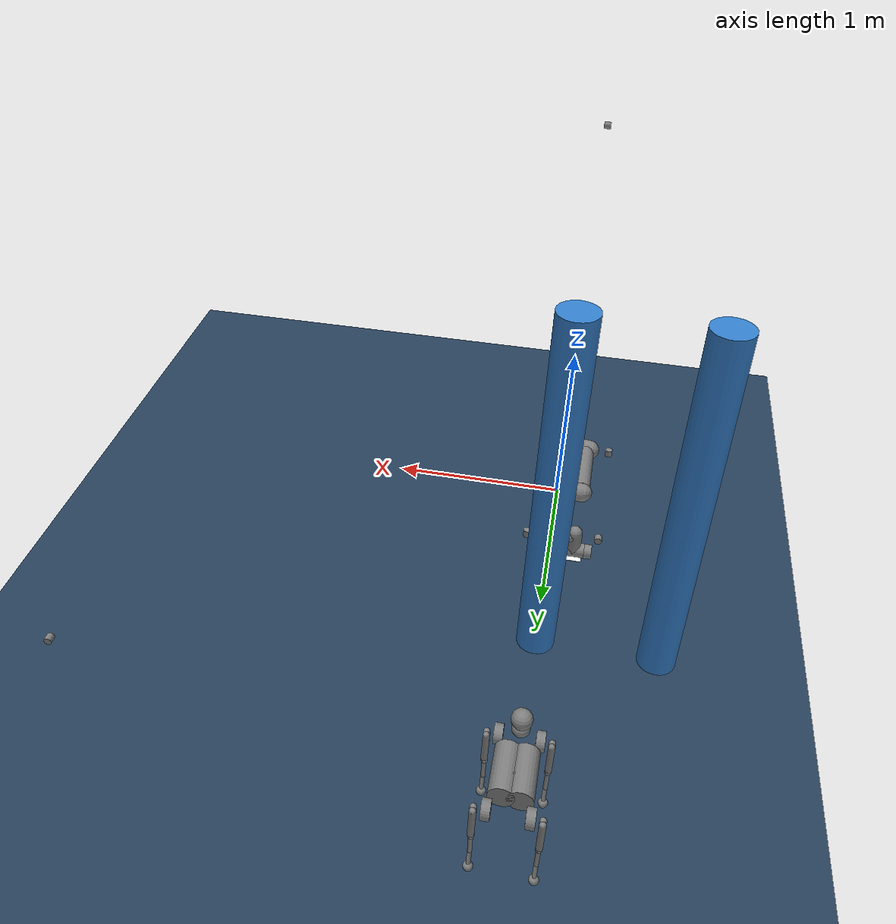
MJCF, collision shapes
<mujoco model="main scene">

  <statistic center="3 0 0.1" extent="0.8"/>
	<option timestep="0.002"/>

  <include file="robots/universal_robots_ur5e/ur5e.xml"/>
  <include file="robots/unitree_go2/go2_mjx.xml"/>

  <visual>
    <headlight diffuse="0.6 0.6 0.6" ambient="0.3 0.3 0.3" specular="0 0 0"/>
    <rgba haze="0.15 0.25 0.35 1"/>
    <global azimuth="-130" elevation="-20"/>
  </visual>

  <asset>
    <texture type="skybox" builtin="gradient" rgb1="0.3 0.5 0.7" rgb2="0 0 0" width="512" height="3072"/>
    <texture type="2d" name="groundplane" builtin="checker" mark="edge" rgb1="0.2 0.3 0.4" rgb2="0.1 0.2 0.3"
      markrgb="0.8 0.8 0.8" width="300" height="300"/>
    <material name="groundplane" texture="groundplane" texuniform="true" texrepeat="5 5" reflectance="0.0"/>

  </asset>

  <worldbody>
    <light pos="0 0 1.5" dir="0 0 -1" directional="true"/>
    <geom name="floor" size="0 0 0.05" type="plane" material="groundplane"  />
    <body name="corridor1" pos="120.3 0 -0.19">
            <geom name="slippery_surface" size="2.0 0.5 0.2" type="plane" priority="2" friction="0.8 0.08 0.02" rgba="0.2 0.2 0.8 0.3"/>
    </body>
    <body name="obstacle1" pos="0 1.3 1.0">
    <joint name="obstacle1_free" type="free"/>
    <geom type="cylinder" size="0.1 1.0" rgba="0.2 0.5 0.8 1"/>
    </body>

    <body name="obstacle2" pos="-0.63 1.3 1.0">
      <joint name="obstacle2_free" type="free"/>
      <geom type="cylinder" size="0.1 1.0" rgba="0.2 0.5 0.8 1"/>
    </body>

  </worldbody>
  <keyframe>
    <key name="home" qpos="
    -1.5708 -1.5708 1.5708 -1.5708 -1.5708 0
    2.6 0.0 0.478
    0.7073883 0 0 -0.7068252
    0.1 0.9 -1.8
    -0.1 0.9 -1.8
    0.1 0.9 -1.8
    -0.1 0.9 -1.8
    0.0 0 0 1 0 0 0
    0.0 0 0 1 0 0 0"
    ctrl="-1.5708 -1.5708 1.5708 -1.5708 -1.5708 0 0.1 0.9 -1.8 -0.1 0.9 -1.8 0.1 0.9 -1.8 -0.1 0.9 -1.8"/>

  </keyframe>

</mujoco>

 <!--desired: 0.7073883 , 0, 0, -0.7068252 -->
<!-- prev quat: 1 0 0 0  -->
<!-- pos="2.6 0.0 0.445" euler="0 0 -1.57" -->

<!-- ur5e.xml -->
<mujoco model="ur5e" root="true">
  <compiler angle="radian" meshdir="robots/its_all_a_mesh" autolimits="true"/>

  <option integrator="implicitfast"/>

  <default>
    <default class="ur5e">
      <material specular="0.5" shininess="0.25"/>
      <joint axis="0 1 0" range="-6.28319 6.28319" armature="0.1"/>
      <general gaintype="fixed" biastype="affine" ctrlrange="-6.2831 6.2831" gainprm="2000" biasprm="0 -2000 -400"
        forcerange="-150 150"/>
      <default class="size3">
        <default class="size3_limited">
          <joint range="-3.1415 3.1415"/>
          <general ctrlrange="-3.1415 3.1415"/>
        </default>
      </default>
      <default class="size1">
        <general gainprm="500" biasprm="0 -500 -100" forcerange="-28 28"/>
      </default>
      <default class="visual_arm">
        <geom type="mesh" contype="0" conaffinity="0" group="2"/>
      </default>
      <default class="collision_arm">
        <geom type="capsule" group="3"/>
        <default class="one_joint_col">
          <geom size="0.02 0.02" type="cylinder"/>
        </default>
        <default class="eef_collision">
          <geom type="cylinder"/>
        </default>
      </default>
      <site size="0.001" rgba="0.5 0.5 0.5 0.3" group="4"/>
    </default>
  </default>

  <asset>
    <material class="ur5e" name="black_2" rgba="0.033 0.033 0.033 1"/>
    <material class="ur5e" name="jointgray" rgba="0.278 0.278 0.278 1"/>
    <material class="ur5e" name="linkgray" rgba="0.82 0.82 0.82 1"/>
    <material class="ur5e" name="urblue" rgba="0.49 0.678 0.8 1"/>

    <mesh name="base_0_ur5e" file="base_0_ur5e.obj"/>
    <mesh name="base_1_ur5e" file="base_1_ur5e.obj"/>
    <mesh file="shoulder_0.obj"/>
    <mesh file="shoulder_1.obj"/>
    <mesh file="shoulder_2.obj"/>
    <mesh file="upperarm_0.obj"/>
    <mesh file="upperarm_1.obj"/>
    <mesh file="upperarm_2.obj"/>
    <mesh file="upperarm_3.obj"/>
    <mesh file="forearm_0.obj"/>
    <mesh file="forearm_1.obj"/>
    <mesh file="forearm_2.obj"/>
    <mesh file="forearm_3.obj"/>
    <mesh file="wrist1_0.obj"/>
    <mesh file="wrist1_1.obj"/>
    <mesh file="wrist1_2.obj"/>
    <mesh file="wrist2_0.obj"/>
    <mesh file="wrist2_1.obj"/>
    <mesh file="wrist2_2.obj"/>
    <mesh file="wrist3.obj"/>

    <!-- ID=0 -->
    <texture name="apriltag_texture_0" type="2d" file="tag_00.png" builtin="none"/>

    <material name="apriltag_material_0" texture="apriltag_texture_0"/>

    <!-- ID=1 -->
    <texture name="apriltag_texture_1" type="2d" file="tag_01.png" builtin="none"/>

    <material name="apriltag_material_1" texture="apriltag_texture_1"/>

    <!-- ID=2 -->
    <texture name="apriltag_texture_2" type="2d" file="tag_02.png" builtin="none"/>

    <material name="apriltag_material_2" texture="apriltag_texture_2"/>

    <!-- ID=3 -->
    <texture name="apriltag_texture_3" type="2d" file="tag_03.png" builtin="none"/>

    <material name="apriltag_material_3" texture="apriltag_texture_3"/>

  </asset>

  <worldbody>
    <light name="spotlight" mode="targetbodycom" target="wrist_2_link" pos="0 -1 2"/>
    <body name="dummy_base" childclass="ur5e" />

    <!-- Collision -->
    <geom name="joint_1" quat="1 0 1 0" pos="0 -1.04 2" class="one_joint_col"/>
    <body name="base_ur5e" pos="0 0 0.19" quat="1 0 0 1" childclass="ur5e" >

        <!-- Collision -->
        <geom name="joint_2" quat="1 0 1 0" pos="2.2 -2.3 0.19" class="one_joint_col"/>

      <inertial mass="4.0" pos="0 0 0" diaginertia="0.00443333156 0.00443333156 0.0072"/>
      <geom mesh="base_0_ur5e" material="black_2" class="visual_arm"/>
      <geom mesh="base_1_ur5e" material="jointgray" class="visual_arm"/>
      <body name="shoulder_link" pos="0 0 0.163">

        <!-- Collision -->
        <geom name="joint_3" quat="1 0 1 0" pos="0 0 0.163" class="one_joint_col"/>

        <inertial mass="3.7" pos="0 0 0" diaginertia="0.0102675 0.0102675 0.00666"/>
        <joint name="shoulder_pan_joint" class="size3" axis="0 0 1"/>
        <geom mesh="shoulder_0" material="urblue" class="visual_arm"/>
        <geom mesh="shoulder_1" material="black_2" class="visual_arm"/>
        <geom mesh="shoulder_2" material="jointgray" class="visual_arm"/>

        <geom class="collision_arm" size="0.06 0.06" pos="0 0 -0.04"/>

        <body name="upper_arm_link" pos="0 0.138 0" quat="1 0 1 0">

          <!-- Collision -->
          <geom name="joint_4" quat="1 0 1 0" pos="0 0.138 0" class="one_joint_col"/>

          <inertial mass="8.393" pos="0 0 0.2125" diaginertia="0.133886 0.133886 0.0151074"/>
          <joint name="shoulder_lift_joint" class="size3"/>

          <!-- ID=3 -->
          <geom name="shoulder_apriltag_3" type="box" pos="0 -0.20 0" quat="0.707 0.707 0 0 " size="0.05 0.05 0.001" material="apriltag_material_3" rgba="1 1 1 1" contype="0" conaffinity="0"/>

          <geom mesh="upperarm_0" material="linkgray" class="visual_arm"/>
          <geom mesh="upperarm_1" material="black_2" class="visual_arm"/>
          <geom mesh="upperarm_2" material="jointgray" class="visual_arm"/>
          <geom mesh="upperarm_3" material="urblue" class="visual_arm"/>
          <geom class="collision_arm" pos="0 -0.04 0" quat="1 1 0 0" size="0.06 0.06"/>
          <geom class="collision_arm" size="0.05 0.2" pos="0 0 0.2"/>
          <body name="forearm_link" pos="0 -0.131 0.425">

            <!-- Collision -->
            <geom name="joint_5" quat="1 0 1 0" pos="0 -0.131 0.425" class="one_joint_col"/>

            <inertial mass="2.275" pos="0 0 0.196" diaginertia="0.0311796 0.0311796 0.004095"/>
            <joint name="elbow_joint" class="size3_limited"/>
            <geom mesh="forearm_0" material="urblue" class="visual_arm"/>
            <geom mesh="forearm_1" material="linkgray" class="visual_arm"/>
            <geom mesh="forearm_2" material="black_2" class="visual_arm"/>
            <geom mesh="forearm_3" material="jointgray" class="visual_arm"/>

            <!-- ID=1 -->
            <geom name="shoulder_apriltag_1" type="box" pos="0 -0.05 0.04" quat="0.707 0.707 0 0 " size="0.05 0.05 0.001" material="apriltag_material_1" rgba="1 1 1 1" contype="0" conaffinity="0"/>

            <geom class="collision_arm" pos="0 0.08 0" quat="1 1 0 0" size="0.055 0.06"/>
            <geom class="collision_arm" size="0.038 0.19" pos="0 0 0.2"/>
            <body name="wrist_1_link" pos="0 0 0.392" quat="1 0 1 0">

              <!-- Collision -->
              <geom name="joint_6" quat="1 0 1 0" pos="0 0 0.392" class="one_joint_col"/>

              <inertial mass="1.219" pos="0 0.127 0" diaginertia="0.0025599 0.0025599 0.0021942"/>
              <joint name="wrist_1_joint" class="size1"/>
              <geom mesh="wrist1_0" material="black_2" class="visual_arm"/>

              <!-- ID=2 -->
              <geom name="shoulder_apriltag_2" type="box" pos="0 -0.06 0" quat="0.5 0.5 -0.5 0.5 " size="0.05 0.05 0.001" material="apriltag_material_2" rgba="1 1 1 1" contype="0" conaffinity="0"/>

              <geom mesh="wrist1_1" material="urblue" class="visual_arm"/>
              <geom mesh="wrist1_2" material="jointgray" class="visual_arm"/>
              <geom class="collision_arm" pos="0 0.05 0" quat="1 1 0 0" size="0.04 0.07"/>
              <body name="wrist_2_link" pos="0 0.127 0">

                <!-- Collision -->
                <geom name="joint_7" quat="1 0 1 0" pos="0 0.127 0" class="one_joint_col"/>

                <inertial mass="1.219" pos="0 0 0.1" diaginertia="0.0025599 0.0025599 0.0021942"/>
                <joint name="wrist_2_joint" axis="0 0 1" class="size1"/>
                <geom mesh="wrist2_0" material="black_2" class="visual_arm"/>
                <geom mesh="wrist2_1" material="urblue" class="visual_arm"/>
                <geom mesh="wrist2_2" material="jointgray" class="visual_arm"/>
                <geom class="collision_arm" size="0.04 0.06" pos="0 0 0.04"/>
                <geom class="collision_arm" pos="0 0.02 0.1" quat="1 1 0 0" size="0.04 0.04"/>
                <body name="wrist_3_link" pos="0 0 0.1">

                  <!-- Collision -->

                  <site name="ee_site" pos="0 0 0.1" size="0.002" rgba="1 0 0 1"/>
                  <inertial mass="0.1889" pos="0 0.0771683 0" quat="1 0 0 1"
                    diaginertia="0.000132134 9.90863e-05 9.90863e-05"/>
                  <joint name="wrist_3_joint" class="size1"/>
                  <geom material="linkgray" mesh="wrist3" class="visual_arm"/>

                  <!-- ID=0 -->
                  <geom name="shoulder_apriltag_0" type="box" pos="0 0 0.04" size="0.05 0.05 0.001" material="apriltag_material_0" rgba="1 1 1 1" contype="0" conaffinity="0"/>

                  <geom class="eef_collision" pos="0 0.08 0" quat="1 1 0 0" size="0.04 0.02"/>
                  <site name="attachment_site" pos="0 0.1 0" quat="-1 1 0 0"/>

                </body>
              </body>
            </body>
          </body>
        </body>
      </body>
    </body>
  </worldbody>

  <actuator>
    <general class="size3" name="shoulder_pan" joint="shoulder_pan_joint"   />
    <general class="size3" name="shoulder_lift" joint="shoulder_lift_joint" />
    <general class="size3_limited" name="elbow" joint="elbow_joint"         />
    <general class="size1" name="wrist_1" joint="wrist_1_joint"             />
    <general class="size1" name="wrist_2" joint="wrist_2_joint"             />
    <general class="size1" name="wrist_3" joint="wrist_3_joint"             />

  </actuator>

  <sensor>
        <velocimeter name="ee_vel" site="ee_site" />
  </sensor>

</mujoco>

<!-- gainprm="500" biasprm="0"
gainprm="500" biasprm="0"
gainprm="500" biasprm="0"
gainprm="500" biasprm="0"
gainprm="500" biasprm="0"
gainprm="500" biasprm="0" -->

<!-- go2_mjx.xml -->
<mujoco model="go2">
  <compiler angle="radian" meshdir="robots/its_all_a_mesh" autolimits="true"/>

  <option iterations="1" ls_iterations="5" timestep="0.002" integrator="Euler">
    <flag eulerdamp="disable"/>
  </option>

  <default>
    <default class="go2">
      <geom friction="0.6" margin="0.001" condim="1"/>
      <joint axis="0 1 0" damping="2" armature="0.01"/>
      <general forcerange="-30 30" biastype="affine" gainprm="50 0 0" biasprm="0 -50 -0.5"/>

      <default class="abduction">
        <joint axis="1 0 0" range="-1.0472 1.0472"/>
        <general ctrlrange="-0.9472 0.9472"/>
      </default>
      <default class="hip">
        <joint range="-1.5708 3.4907"/>
        <general ctrlrange="-1.4 2.5"/>
      </default>
      <default class="knee">
        <joint range="-2.7227 -0.83776"/>
        <general ctrlrange="-2.6227 -0.84776"/>
      </default>
      <default class="visual">
        <geom type="mesh" contype="0" conaffinity="0" group="2"/>
      </default>
      <default class="go2foot">
        <site group="1" pos="-0.002 0 -0.213"/>
        <geom rgba="0.231373 0.380392 0.705882 1"/>
      </default>

      <!-- Revised collision defaults modeled after go1 -->
      <default class="collision">
        <geom group="3" type="capsule"/>
        <default class="hip_left1">
          <geom size="0.046 0.02" pos="0 0.045 0" quat="1 1 0 0" type="cylinder"/>
        </default>
        <default class="hip_left2">
          <geom size="0.031 0.02" pos="0 0.065 0" quat="1 1 0 0" type="cylinder"/>
        </default>
        <default class="hip_left3">
          <geom size="0.046 0.02" quat="1 1 0 0" type="cylinder"/>
        </default>
        <default class="hip_right1">
          <geom size="0.046 0.02" pos="0 -0.045 0" quat="1 1 0 0" type="cylinder"/>
        </default>
        <default class="hip_right2">
          <geom size="0.031 0.02" pos="0 -0.065 0" quat="1 1 0 0" type="cylinder"/>
        </default>
        <default class="hip_right3">
          <geom size="0.046 0.02" quat="1 1 0 0" type="cylinder"/>
        </default>
        <default class="thigh1">
          <geom size="0.015" fromto="-0.02 0 0 -0.02 0 -0.16"/>
        </default>
        <default class="thigh2">
          <geom size="0.015" fromto="0 0 0 -0.02 0 -0.1"/>
        </default>
        <default class="thigh3">
          <geom size="0.015" fromto="-0.02 0 -0.16 0 0 -0.2"/>
        </default>
        <default class="calf1">
          <geom size="0.01" fromto="0 0 0 0.02 0 -0.13"/>
        </default>
        <default class="calf2">
          <geom size="0.01" fromto="0.02 0 -0.13 0 0 -0.2"/>
        </default>
        <default class="foot">
          <geom type="sphere" size="0.023" pos="0 0 -0.213" solimp="0.9 0.95 0.023" condim="3"/>
        </default>
      </default>
    </default>
  </default>

  <asset>
    <material name="metal" rgba=".9 .95 .95 1"/>
    <material name="black" rgba="0 0 0 1"/>
    <material name="white" rgba="1 1 1 1"/>
    <material name="gray" rgba="0.671705 0.692426 0.774270 1"/>

    <mesh file="base_0_go2.obj"/>
    <mesh file="base_1_go2.obj"/>
    <mesh file="base_2.obj"/>
    <mesh file="base_3.obj"/>
    <mesh file="base_4.obj"/>
    <mesh file="hip_0.obj"/>
    <mesh file="hip_1.obj"/>
    <mesh file="thigh_0.obj"/>
    <mesh file="thigh_1.obj"/>
    <mesh file="thigh_mirror_0.obj"/>
    <mesh file="thigh_mirror_1.obj"/>
    <mesh file="calf_0.obj"/>
    <mesh file="calf_1.obj"/>
    <mesh file="calf_mirror_0.obj"/>
    <mesh file="calf_mirror_1.obj"/>
    <mesh file="foot.obj"/>
  </asset>
  <worldbody>
    <body name="base" pos="0.0 2.5 0.445" euler="0 0 -1.57" childclass="go2">
      <camera name="track" pos="0.846 -1.465 0.916" xyaxes="0.866 0.500 0.000 -0.171 0.296 0.940" mode="trackcom"/>
      <inertial pos="0.021112 0 -0.005366" quat="-0.000543471 0.713435 -0.00173769 0.700719" mass="6.921"
        diaginertia="0.107027 0.0980771 0.0244531"/>
      <freejoint/>
      <!-- Add camera -->
      <camera name="realsense_cam" pos="0.2 0 0.4" euler="0 -1.57 0" fovy="60"/>

      <!-- Revised base collision geoms: two cylindrical approximations -->
      <geom class="collision" type="cylinder" quat="1 0 1 0" pos="0 -0.04 0" size="0.058 0.125"/>
      <geom class="collision" type="cylinder" quat="1 0 1 0" pos="0 0.04 0" size="0.058 0.125"/>

      <!-- Head and Lidar Collision Spheres -->
      <site name="head" pos="0.285 0 0.01" rgba="1 0 0 1" size="0.02" group="5"/>
      <geom name="head_collision" type="sphere" size="0.05 0.045" pos="0.285 0 0.01" class="collision"/>
      <geom name="lidar_collision" type="sphere" size="0.043" pos="0.293 0 -0.06" class="collision"/>

      <!-- Base visual meshes remain unchanged -->
      <geom mesh="base_0_go2" material="black" class="visual"/>
      <geom mesh="base_1_go2" material="black" class="visual"/>
      <geom mesh="base_2" material="black" class="visual"/>
      <geom mesh="base_3" material="white" class="visual"/>
      <geom mesh="base_4" material="gray" class="visual"/>
      <site name="imu" pos="-0.02557 0 0.04232"/>

      <!-- Left Front Leg -->
      <body name="FL_hip" pos="0.1934 0.0465 0">
        <inertial pos="-0.0054 0.00194 -0.000105" quat="0.497014 0.499245 0.505462 0.498237" mass="0.678"
          diaginertia="0.00088403 0.000596003 0.000479967"/>
        <joint name="FL_hip_joint" class="abduction"/>
        <geom mesh="hip_0" material="metal" class="visual"/>
        <geom mesh="hip_1" material="gray" class="visual"/>
        <!-- Use collision defaults for left hip -->
        <geom name="fl_hip" class="hip_left1"/>
        <body name="FL_thigh" pos="0 0.0955 0">
          <inertial pos="-0.00374 -0.0223 -0.0327" quat="0.829533 0.0847635 -0.0200632 0.551623" mass="1.152"
            diaginertia="0.00594973 0.00584149 0.000878787"/>
          <joint name="FL_thigh_joint" class="hip"/>
          <geom mesh="thigh_0" material="metal" class="visual"/>
          <geom mesh="thigh_1" material="gray" class="visual"/>
          <!-- Use three collision geoms for thigh -->
          <geom name="fl_thigh1" class="thigh1"/>
          <geom name="fl_thigh2" class="thigh2"/>
          <geom name="fl_thigh3" class="thigh3"/>
          <body name="FL_calf" pos="0 0 -0.213">
            <inertial pos="0.00629595 -0.000622121 -0.141417" quat="0.710672 0.00154099 -0.00450087 0.703508"
              mass="0.241352" diaginertia="0.0014901 0.00146356 5.31397e-05"/>
            <joint name="FL_calf_joint" class="knee"/>
            <geom mesh="calf_0" material="gray" class="visual"/>
            <geom mesh="calf_1" material="black" class="visual"/>
            <!-- Two collision geoms for calf -->
            <geom name="fl_calf1" class="calf1"/>
            <geom name="fl_calf2" class="calf2"/>
            <!-- Foot: using the revised foot collision -->
            <geom pos="0 0 -0.213" mesh="foot" class="visual" material="black"/>
            <geom name="FL" class="foot"/>
            <site name="FL_foot" class="go2foot"/>
          </body>
        </body>
      </body>

      <!-- Right Front Leg -->
      <body name="FR_hip" pos="0.1934 -0.0465 0">
        <inertial pos="-0.0054 -0.00194 -0.000105" quat="0.498237 0.505462 0.499245 0.497014" mass="0.678"
          diaginertia="0.00088403 0.000596003 0.000479967"/>
        <joint name="FR_hip_joint" class="abduction"/>
        <geom mesh="hip_0" material="metal" class="visual" quat="4.63268e-05 1 0 0"/>
        <geom mesh="hip_1" material="gray" class="visual" quat="4.63268e-05 1 0 0"/>
        <!-- Use collision default for right hip -->
        <geom name="fr_hip" class="hip_right1"/>
        <body name="FR_thigh" pos="0 -0.0955 0">
          <inertial pos="-0.00374 0.0223 -0.0327" quat="0.551623 -0.0200632 0.0847635 0.829533" mass="1.152"
            diaginertia="0.00594973 0.00584149 0.000878787"/>
          <joint name="FR_thigh_joint" class="hip"/>
          <geom mesh="thigh_mirror_0" material="metal" class="visual"/>
          <geom mesh="thigh_mirror_1" material="gray" class="visual"/>
          <!-- Three collision geoms for thigh -->
          <geom name="fr_thigh1" class="thigh1"/>
          <geom name="fr_thigh2" class="thigh2"/>
          <geom name="fr_thigh3" class="thigh3"/>
          <body name="FR_calf" pos="0 0 -0.213">
            <inertial pos="0.00629595 0.000622121 -0.141417" quat="0.703508 -0.00450087 0.00154099 0.710672"
              mass="0.241352" diaginertia="0.0014901 0.00146356 5.31397e-05"/>
            <joint name="FR_calf_joint" class="knee"/>
            <geom mesh="calf_mirror_0" material="gray" class="visual"/>
            <geom mesh="calf_mirror_1" material="black" class="visual"/>
            <!-- Two collision geoms for calf -->
            <geom name="fr_calf1" class="calf1"/>
            <geom name="fr_calf2" class="calf2"/>
            <!-- Foot collision -->
            <geom pos="0 0 -0.213" mesh="foot" class="visual" material="black"/>
            <geom name="FR" class="foot"/>
            <site name="FR_foot" class="go2foot"/>
          </body>
        </body>
      </body>

      <!-- Left Rear Leg -->
      <body name="RL_hip" pos="-0.1934 0.0465 0">
        <inertial pos="0.0054 0.00194 -0.000105" quat="0.505462 0.498237 0.497014 0.499245" mass="0.678"
          diaginertia="0.00088403 0.000596003 0.000479967"/>
        <joint name="RL_hip_joint" class="abduction"/>
        <geom mesh="hip_0" material="metal" class="visual" quat="4.63268e-05 0 1 0"/>
        <geom mesh="hip_1" material="gray" class="visual" quat="4.63268e-05 0 1 0"/>
        <!-- Use collision default for left hip (rear) -->
        <geom name="rl_hip" class="hip_left1"/>
        <body name="RL_thigh" pos="0 0.0955 0">
          <inertial pos="-0.00374 -0.0223 -0.0327" quat="0.829533 0.0847635 -0.0200632 0.551623" mass="1.152"
            diaginertia="0.00594973 0.00584149 0.000878787"/>
          <joint name="RL_thigh_joint" class="hip"/>
          <geom mesh="thigh_0" material="metal" class="visual"/>
          <geom mesh="thigh_1" material="gray" class="visual"/>
          <!-- Three collision geoms for thigh -->
          <geom name="rl_thigh1" class="thigh1"/>
          <geom name="rl_thigh2" class="thigh2"/>
          <geom name="rl_thigh3" class="thigh3"/>
          <body name="RL_calf" pos="0 0 -0.213">
            <inertial pos="0.00629595 -0.000622121 -0.141417" quat="0.710672 0.00154099 -0.00450087 0.703508"
              mass="0.241352" diaginertia="0.0014901 0.00146356 5.31397e-05"/>
            <joint name="RL_calf_joint" class="knee"/>
            <geom mesh="calf_0" material="gray" class="visual"/>
            <geom mesh="calf_1" material="black" class="visual"/>
            <!-- Two collision geoms for calf -->
            <geom name="rl_calf1" class="calf1"/>
            <geom name="rl_calf2" class="calf2"/>
            <!-- Foot collision -->
            <geom pos="0 0 -0.213" mesh="foot" class="visual" material="black"/>
            <geom name="RL" class="foot"/>
            <site name="RL_foot" class="go2foot"/>
          </body>
        </body>
      </body>

      <!-- Right Rear Leg -->
      <body name="RR_hip" pos="-0.1934 -0.0465 0">
        <inertial pos="0.0054 -0.00194 -0.000105" quat="0.499245 0.497014 0.498237 0.505462" mass="0.678"
          diaginertia="0.00088403 0.000596003 0.000479967"/>
        <joint name="RR_hip_joint" class="abduction"/>
        <geom mesh="hip_0" material="metal" class="visual" quat="2.14617e-09 4.63268e-05 4.63268e-05 -1"/>
        <geom mesh="hip_1" material="gray" class="visual" quat="2.14617e-09 4.63268e-05 4.63268e-05 -1"/>
        <!-- Use collision default for right hip (rear) -->
        <geom name="rr_hip" class="hip_right1"/>
        <body name="RR_thigh" pos="0 -0.0955 0">
          <inertial pos="-0.00374 0.0223 -0.0327" quat="0.551623 -0.0200632 0.0847635 0.829533" mass="1.152"
            diaginertia="0.00594973 0.00584149 0.000878787"/>
          <joint name="RR_thigh_joint" class="hip"/>
          <geom mesh="thigh_mirror_0" material="metal" class="visual"/>
          <geom mesh="thigh_mirror_1" material="gray" class="visual"/>
          <!-- Three collision geoms for thigh -->
          <geom name="rr_thigh1" class="thigh1"/>
          <geom name="rr_thigh2" class="thigh2"/>
          <geom name="rr_thigh3" class="thigh3"/>
          <body name="RR_calf" pos="0 0 -0.213">
            <inertial pos="0.00629595 0.000622121 -0.141417" quat="0.703508 -0.00450087 0.00154099 0.710672"
              mass="0.241352" diaginertia="0.0014901 0.00146356 5.31397e-05"/>
            <joint name="RR_calf_joint" class="knee"/>
            <geom mesh="calf_mirror_0" material="gray" class="visual"/>
            <geom mesh="calf_mirror_1" material="black" class="visual"/>
            <!-- Two collision geoms for calf -->
            <geom name="rr_calf1" class="calf1"/>
            <geom name="rr_calf2" class="calf2"/>
            <!-- Foot collision -->
            <geom pos="0 0 -0.213" mesh="foot" class="visual" material="black"/>
            <geom name="RR" class="foot"/>
            <site name="RR_foot" class="go2foot"/>
          </body>
        </body>
      </body>
    </body>
  </worldbody>

  <actuator>
    <general class="abduction" name="FR_hip" joint="FR_hip_joint"/>
    <general class="hip" name="FR_thigh" joint="FR_thigh_joint"/>
    <general class="knee" name="FR_calf" joint="FR_calf_joint"/>
    <general class="abduction" name="FL_hip" joint="FL_hip_joint"/>
    <general class="hip" name="FL_thigh" joint="FL_thigh_joint"/>
    <general class="knee" name="FL_calf" joint="FL_calf_joint"/>
    <general class="abduction" name="RR_hip" joint="RR_hip_joint"/>
    <general class="hip" name="RR_thigh" joint="RR_thigh_joint"/>
    <general class="knee" name="RR_calf" joint="RR_calf_joint"/>
    <general class="abduction" name="RL_hip" joint="RL_hip_joint"/>
    <general class="hip" name="RL_thigh" joint="RL_thigh_joint"/>
    <general class="knee" name="RL_calf" joint="RL_calf_joint"/>
  </actuator>

  <sensor>
    <jointpos joint="FL_hip_joint" name="abduction_front_left_pos"/>
    <jointpos joint="FL_thigh_joint" name="hip_front_left_pos"/>
    <jointpos joint="FL_calf_joint" name="knee_front_left_pos"/>
    <jointpos joint="RL_hip_joint" name="abduction_hind_left_pos"/>
    <jointpos joint="RL_thigh_joint" name="hip_hind_left_pos"/>
    <jointpos joint="RL_calf_joint" name="knee_hind_left_pos"/>
    <jointpos joint="FR_hip_joint" name="abduction_front_right_pos"/>
    <jointpos joint="FR_thigh_joint" name="hip_front_right_pos"/>
    <jointpos joint="FR_calf_joint" name="knee_front_right_pos"/>
    <jointpos joint="RR_hip_joint" name="abduction_hind_right_pos"/>
    <jointpos joint="RR_thigh_joint" name="hip_hind_right_pos"/>
    <jointpos joint="RR_calf_joint" name="knee_hind_right_pos"/>
    <jointvel joint="FL_hip_joint" name="abduction_front_left_vel"/>
    <jointvel joint="FL_thigh_joint" name="hip_front_left_vel"/>
    <jointvel joint="FL_calf_joint" name="knee_front_left_vel"/>
    <jointvel joint="RL_hip_joint" name="abduction_hind_left_vel"/>
    <jointvel joint="RL_thigh_joint" name="hip_hind_left_vel"/>
    <jointvel joint="RL_calf_joint" name="knee_hind_left_vel"/>
    <jointvel joint="FR_hip_joint" name="abduction_front_right_vel"/>
    <jointvel joint="FR_thigh_joint" name="hip_front_right_vel"/>
    <jointvel joint="FR_calf_joint" name="knee_front_right_vel"/>
    <jointvel joint="RR_hip_joint" name="abduction_hind_right_vel"/>
    <jointvel joint="RR_thigh_joint" name="hip_hind_right_vel"/>
    <jointvel joint="RR_calf_joint" name="knee_hind_right_vel"/>
    <gyro site="imu" name="gyro"/>
    <accelerometer site="imu" name="accelerometer"/>
    <framezaxis objtype="site" objname="imu" name="upvector"/>
    <framexaxis objtype="site" objname="imu" name="forwardvector"/>
    <framepos objtype="site" objname="imu" name="position"/>
    <framequat objtype="site" objname="imu" name="orientation"/>
    <framepos objtype="site" objname="imu" name="global_position"/>
    <framelinvel objtype="site" objname="imu" name="global_linvel"/>
    <frameangvel objtype="site" objname="imu" name="global_angvel"/>
    <velocimeter site="imu" name="local_linvel"/>
    <framelinvel objtype="site" objname="FR_foot" name="FR_foot_global_linvel"/>
    <framelinvel objtype="site" objname="FL_foot" name="FL_foot_global_linvel"/>
    <framelinvel objtype="site" objname="RR_foot" name="RR_foot_global_linvel"/>
    <framelinvel objtype="site" objname="RL_foot" name="RL_foot_global_linvel"/>
    <framepos objtype="site" objname="FR_foot" name="FR_foot_pos" reftype="site" refname="imu"/>
    <framepos objtype="site" objname="FL_foot" name="FL_foot_pos" reftype="site" refname="imu"/>
    <framepos objtype="site" objname="RR_foot" name="RR_foot_pos" reftype="site" refname="imu"/>
    <framepos objtype="site" objname="RL_foot" name="RL_foot_pos" reftype="site" refname="imu"/>
    <framepos objtype="site" objname="head" name="head_pos"/>
  </sensor>

</mujoco>
